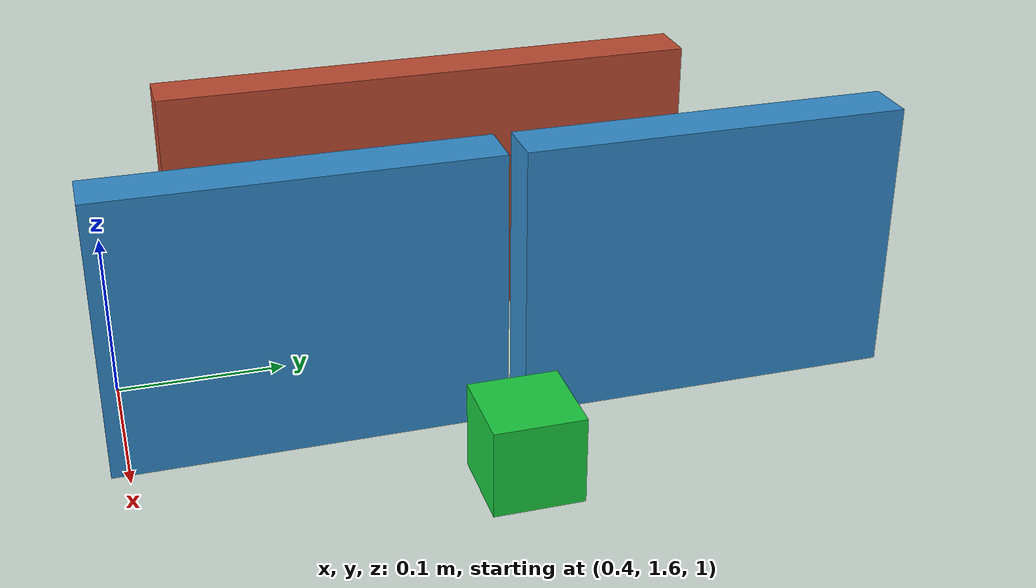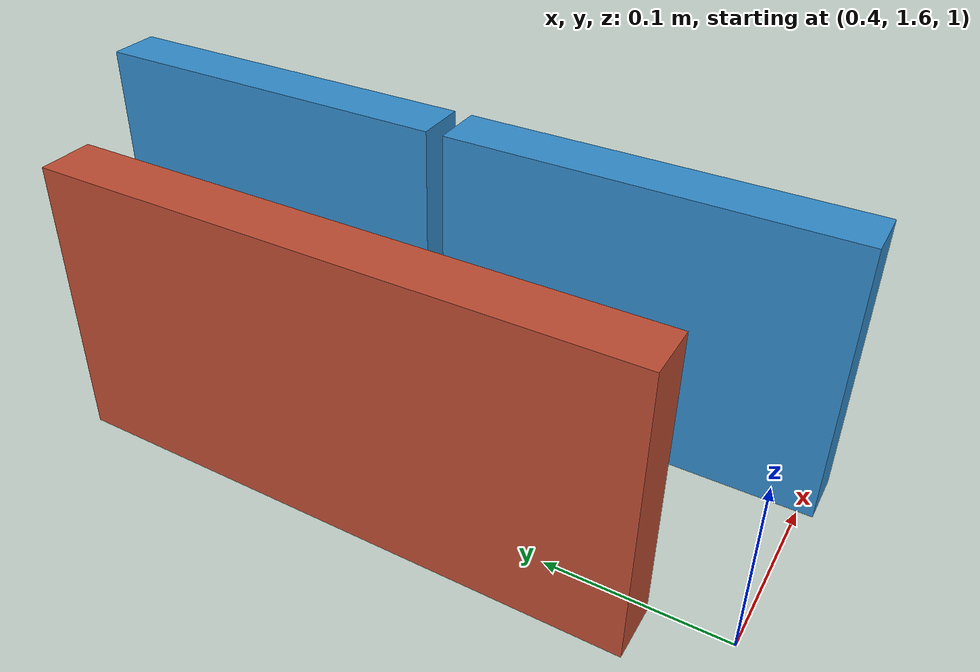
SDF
<sdf version="1.9">
 <world name="restricted_chicane_env">
  <physics name="1ms" type="ignored">
   <max_step_size>0.001</max_step_size>
   <real_time_factor>1.0</real_time_factor>
   <real_time_update_rate>1000</real_time_update_rate>
  </physics>
  <plugin name="gz::sim::systems::Physics" filename="gz-sim-physics-system"/>
  <plugin name="gz::sim::systems::UserCommands" filename="gz-sim-user-commands-system"/>
  <plugin name="gz::sim::systems::Sensors" filename="gz-sim-sensors-system">
   <render_engine>ogre2</render_engine>
  </plugin>
  <plugin name="gz::sim::systems::SceneBroadcaster" filename="gz-sim-scene-broadcaster-system"/>
  <scene>
   <ambient>0.45 0.45 0.45 1</ambient>
   <background>0.69 0.73 0.69 1</background>
   <shadows>true</shadows>
  </scene>
  <gravity>0 0 -9.8</gravity>
  <include><uri>model://ground_plane</uri></include>
  <include><uri>model://sun</uri></include>
  <model name="chicane_barrier_1">
   <static>true</static>
   <pose>0.37 1.80 1.095 0 0 0</pose>
   <link name="link">
    <collision name="collision"><geometry><box><size>0.03 0.32 0.16</size></box></geometry></collision>
    <visual name="visual">
     <geometry><box><size>0.03 0.32 0.16</size></box></geometry>
     <material><ambient>0.75 0.30 0.20 1</ambient><diffuse>0.75 0.30 0.20 1</diffuse></material>
    </visual>
   </link>
  </model>
  <model name="chicane_barrier_2">
   <static>true</static>
   <pose>0.50 1.70 1.095 0 0 0</pose>
   <link name="link">
    <collision name="collision"><geometry><box><size>0.03 0.22 0.16</size></box></geometry></collision>
    <visual name="visual">
     <geometry><box><size>0.03 0.22 0.16</size></box></geometry>
     <material><ambient>0.20 0.55 0.80 1</ambient><diffuse>0.20 0.55 0.80 1</diffuse></material>
    </visual>
   </link>
  </model>
  <model name="chicane_barrier_3">
   <static>true</static>
   <pose>0.50 1.93 1.095 0 0 0</pose>
   <link name="link">
    <collision name="collision"><geometry><box><size>0.03 0.22 0.16</size></box></geometry></collision>
    <visual name="visual">
     <geometry><box><size>0.03 0.22 0.16</size></box></geometry>
     <material><ambient>0.20 0.55 0.80 1</ambient><diffuse>0.20 0.55 0.80 1</diffuse></material>
    </visual>
   </link>
  </model>
  <model name="chicane_target_cube">
   <static>false</static>
   <pose>0.58 1.80 1.040 0 0 0</pose>
   <link name="link">
    <inertial>
     <mass>0.12</mass>
     <inertia>
      <ixx>0.00005</ixx>
      <ixy>0.0</ixy>
      <ixz>0.0</ixz>
      <iyy>0.00005</iyy>
      <iyz>0.0</iyz>
      <izz>0.00005</izz>
     </inertia>
    </inertial>
    <collision name="collision"><geometry><box><size>0.05 0.05 0.05</size></box></geometry></collision>
    <visual name="visual">
     <geometry><box><size>0.05 0.05 0.05</size></box></geometry>
     <material><ambient>0.10 0.80 0.25 1</ambient><diffuse>0.10 0.80 0.25 1</diffuse></material>
    </visual>
   </link>
  </model>
 </world>
</sdf>
